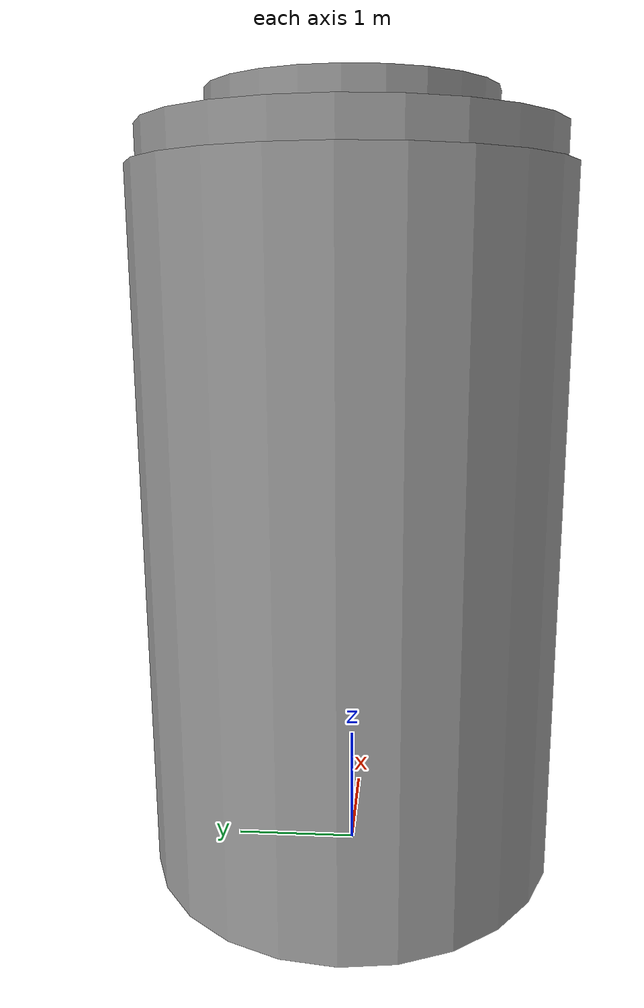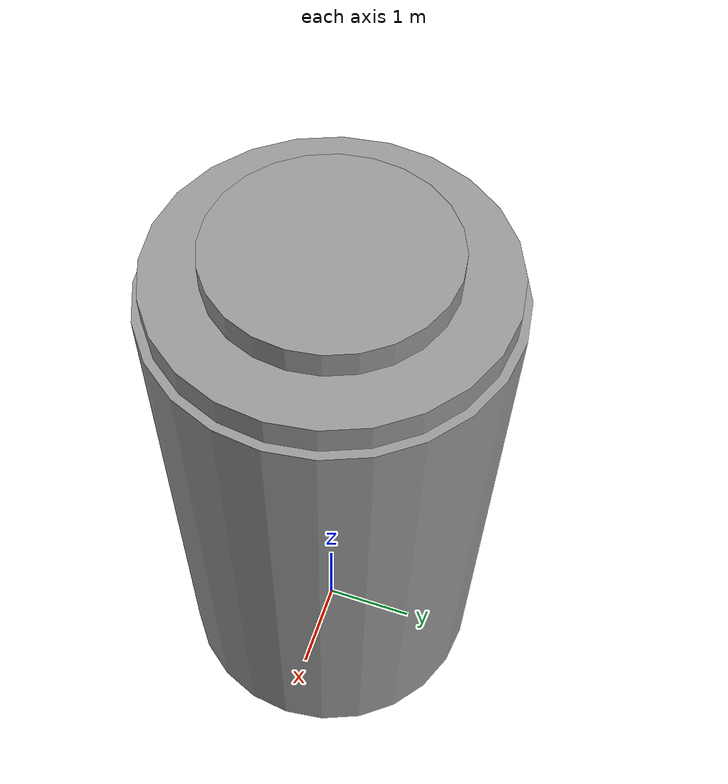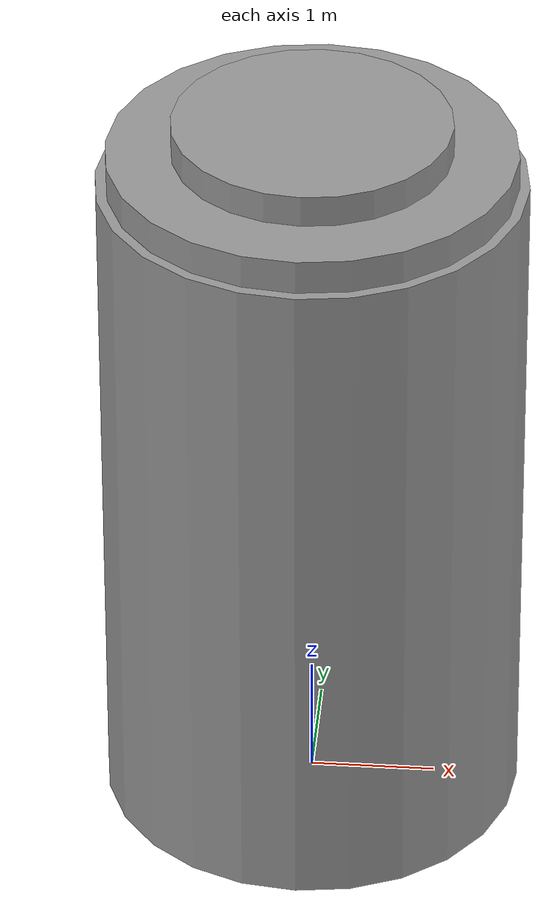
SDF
<?xml version='1.0'?>
<sdf version='1.7'>
  <model name='cask1'>
    <link name='link'>
      <inertial>
        <mass>1</mass>
        <inertia>
          <ixx>0.145833</ixx>
          <ixy>0</ixy>
          <ixz>0</ixz>
          <iyy>0.145833</iyy>
          <iyz>0</iyz>
          <izz>0.125</izz>
        </inertia>
        <pose>0 0 0 0 -0 0</pose>
      </inertial>
      <self_collide>1</self_collide>
      <enable_wind>0</enable_wind>
      <kinematic>0</kinematic>
      <pose>0 0 2.8195 0 -0 0</pose>
      <gravity>1</gravity>
      <visual name='visual'>
        <geometry>
          <cylinder>
            <radius>1.683</radius>
            <length>5.639</length>
          </cylinder>
        </geometry>
        <material>
          <script>
            <name>Gazebo/Grey</name>
            <uri>file://media/materials/scripts/gazebo.material</uri>
          </script>
          <shader type='pixel'>
            <normal_map>__default__</normal_map>
          </shader>
          <ambient>0.5 0.5 0.5 1</ambient>
          <diffuse>0.7 0.7 0.7 1</diffuse>
          <specular>0.01 0.01 0.01 1</specular>
          <emissive>0 0 0 1</emissive>
        </material>
        <pose>0 0 0 0 -0 0</pose>
        <transparency>0</transparency>
        <cast_shadows>1</cast_shadows>
      </visual>
      <collision name='collision'>
        <laser_retro>0</laser_retro>
        <max_contacts>10</max_contacts>
        <pose>0 0 0 0 -0 0</pose>
        <geometry>
          <cylinder>
            <radius>1.683</radius>
            <length>5.639</length>
          </cylinder>
        </geometry>
        <surface>
          <friction>
            <ode>
              <mu>1</mu>
              <mu2>1</mu2>
              <fdir1>0 0 0</fdir1>
              <slip1>0</slip1>
              <slip2>0</slip2>
            </ode>
            <torsional>
              <coefficient>1</coefficient>
              <patch_radius>0</patch_radius>
              <surface_radius>0</surface_radius>
              <use_patch_radius>1</use_patch_radius>
              <ode>
                <slip>0</slip>
              </ode>
            </torsional>
          </friction>
          <bounce>
            <restitution_coefficient>0</restitution_coefficient>
            <threshold>1e+06</threshold>
          </bounce>
          <contact>
            <collide_without_contact>0</collide_without_contact>
            <collide_without_contact_bitmask>1</collide_without_contact_bitmask>
            <collide_bitmask>1</collide_bitmask>
            <ode>
              <soft_cfm>0</soft_cfm>
              <soft_erp>0.2</soft_erp>
              <kp>1e+13</kp>
              <kd>1</kd>
              <max_vel>0.01</max_vel>
              <min_depth>0</min_depth>
            </ode>
            <bullet>
              <split_impulse>1</split_impulse>
              <split_impulse_penetration_threshold>-0.01</split_impulse_penetration_threshold>
              <soft_cfm>0</soft_cfm>
              <soft_erp>0.2</soft_erp>
              <kp>1e+13</kp>
              <kd>1</kd>
            </bullet>
          </contact>
        </surface>
      </collision>
    </link>
    <link name='link_0'>
      <inertial>
        <mass>1</mass>
        <inertia>
          <ixx>0.145833</ixx>
          <ixy>0</ixy>
          <ixz>0</ixz>
          <iyy>0.145833</iyy>
          <iyz>0</iyz>
          <izz>0.125</izz>
        </inertia>
        <pose>0 0 0 0 -0 0</pose>
      </inertial>
      <pose>0 0 5.7755 0 -0 0</pose>
      <gravity>1</gravity>
      <self_collide>1</self_collide>
      <kinematic>0</kinematic>
      <enable_wind>0</enable_wind>
      <visual name='visual'>
        <pose>0 0 0 0 -0 0</pose>
        <geometry>
          <cylinder>
            <radius>1.6</radius>
            <length>0.273</length>
          </cylinder>
        </geometry>
        <material>
          <lighting>1</lighting>
          <script>
            <uri>file://media/materials/scripts/gazebo.material</uri>
            <name>Gazebo/Grey</name>
          </script>
          <shader type='pixel'>
            <normal_map>__default__</normal_map>
          </shader>
          <ambient>0.5 0.5 0.5 1</ambient>
          <diffuse>0.7 0.7 0.7 1</diffuse>
          <specular>0.01 0.01 0.01 1</specular>
          <emissive>0 0 0 1</emissive>
        </material>
        <transparency>0</transparency>
        <cast_shadows>1</cast_shadows>
      </visual>
      <collision name='collision'>
        <laser_retro>0</laser_retro>
        <max_contacts>10</max_contacts>
        <pose>0 0 0 0 -0 0</pose>
        <geometry>
          <cylinder>
            <radius>1.6</radius>
            <length>0.273</length>
          </cylinder>
        </geometry>
        <surface>
          <friction>
            <ode>
              <mu>1</mu>
              <mu2>1</mu2>
              <fdir1>0 0 0</fdir1>
              <slip1>0</slip1>
              <slip2>0</slip2>
            </ode>
            <torsional>
              <coefficient>1</coefficient>
              <patch_radius>0</patch_radius>
              <surface_radius>0</surface_radius>
              <use_patch_radius>1</use_patch_radius>
              <ode>
                <slip>0</slip>
              </ode>
            </torsional>
          </friction>
          <bounce>
            <restitution_coefficient>0</restitution_coefficient>
            <threshold>1e+06</threshold>
          </bounce>
          <contact>
            <collide_without_contact>0</collide_without_contact>
            <collide_without_contact_bitmask>1</collide_without_contact_bitmask>
            <collide_bitmask>1</collide_bitmask>
            <ode>
              <soft_cfm>0</soft_cfm>
              <soft_erp>0.2</soft_erp>
              <kp>1e+13</kp>
              <kd>1</kd>
              <max_vel>0.01</max_vel>
              <min_depth>0</min_depth>
            </ode>
            <bullet>
              <split_impulse>1</split_impulse>
              <split_impulse_penetration_threshold>-0.01</split_impulse_penetration_threshold>
              <soft_cfm>0</soft_cfm>
              <soft_erp>0.2</soft_erp>
              <kp>1e+13</kp>
              <kd>1</kd>
            </bullet>
          </contact>
        </surface>
      </collision>
    </link>
    <link name='link_1'>
      <inertial>
        <mass>1</mass>
        <inertia>
          <ixx>0.145833</ixx>
          <ixy>0</ixy>
          <ixz>0</ixz>
          <iyy>0.145833</iyy>
          <iyz>0</iyz>
          <izz>0.125</izz>
        </inertia>
        <pose>0 0 0 0 -0 0</pose>
      </inertial>
      <pose>-0 0 6.039 0 -0 0</pose>
      <gravity>1</gravity>
      <self_collide>1</self_collide>
      <kinematic>0</kinematic>
      <enable_wind>0</enable_wind>
      <visual name='visual'>
        <pose>0 0 0 0 -0 0</pose>
        <geometry>
          <cylinder>
            <radius>1.092</radius>
            <length>0.254</length>
          </cylinder>
        </geometry>
        <material>
          <lighting>1</lighting>
          <script>
            <uri>file://media/materials/scripts/gazebo.material</uri>
            <name>Gazebo/Grey</name>
          </script>
          <shader type='pixel'>
            <normal_map>__default__</normal_map>
          </shader>
          <ambient>0.5 0.5 0.5 1</ambient>
          <diffuse>0.7 0.7 0.7 1</diffuse>
          <specular>0.01 0.01 0.01 1</specular>
          <emissive>0 0 0 1</emissive>
        </material>
        <transparency>0</transparency>
        <cast_shadows>1</cast_shadows>
      </visual>
      <collision name='collision'>
        <laser_retro>0</laser_retro>
        <max_contacts>10</max_contacts>
        <pose>0 0 0 0 -0 0</pose>
        <geometry>
          <cylinder>
            <radius>1.092</radius>
            <length>0.254</length>
          </cylinder>
        </geometry>
        <surface>
          <friction>
            <ode>
              <mu>1</mu>
              <mu2>1</mu2>
              <fdir1>0 0 0</fdir1>
              <slip1>0</slip1>
              <slip2>0</slip2>
            </ode>
            <torsional>
              <coefficient>1</coefficient>
              <patch_radius>0</patch_radius>
              <surface_radius>0</surface_radius>
              <use_patch_radius>1</use_patch_radius>
              <ode>
                <slip>0</slip>
              </ode>
            </torsional>
          </friction>
          <bounce>
            <restitution_coefficient>0</restitution_coefficient>
            <threshold>1e+06</threshold>
          </bounce>
          <contact>
            <collide_without_contact>0</collide_without_contact>
            <collide_without_contact_bitmask>1</collide_without_contact_bitmask>
            <collide_bitmask>1</collide_bitmask>
            <ode>
              <soft_cfm>0</soft_cfm>
              <soft_erp>0.2</soft_erp>
              <kp>1e+13</kp>
              <kd>1</kd>
              <max_vel>0.01</max_vel>
              <min_depth>0</min_depth>
            </ode>
            <bullet>
              <split_impulse>1</split_impulse>
              <split_impulse_penetration_threshold>-0.01</split_impulse_penetration_threshold>
              <soft_cfm>0</soft_cfm>
              <soft_erp>0.2</soft_erp>
              <kp>1e+13</kp>
              <kd>1</kd>
            </bullet>
          </contact>
        </surface>
      </collision>
    </link>
    <static>1</static>
    <allow_auto_disable>1</allow_auto_disable>
  </model>
</sdf>
